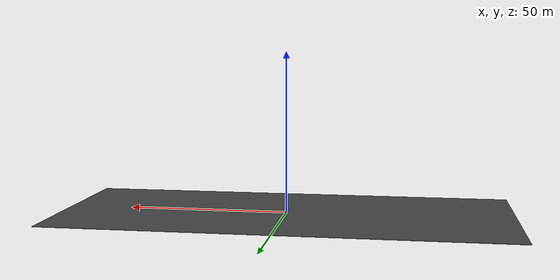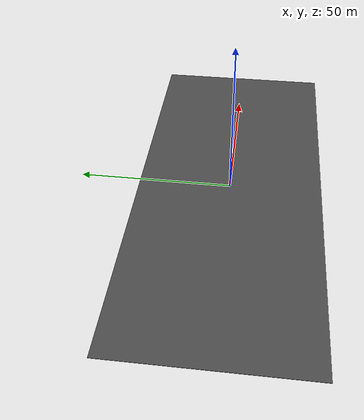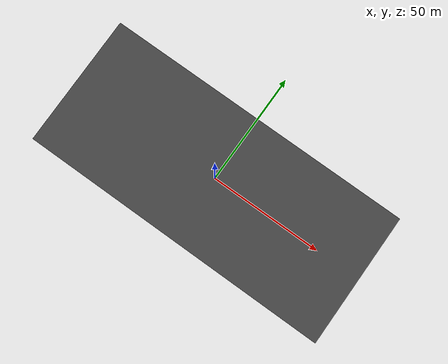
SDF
<?xml version="1.0" ?>
<sdf version="1.4">
  <model name="challenge_1_plane">
    <static>true</static>
    <link name="link">
      <collision name="collision">
        <geometry>
          <box>
            <size>140 60 .15</size>
          </box>
        </geometry>
      </collision>
      <visual name="visual">
        <cast_shadows>false</cast_shadows>
        <geometry>
          <box>
            <size>140 60 .15</size>
          </box>
        </geometry>
        <material>
          <script>
            <uri>model://challenge_1_plane/materials/scripts</uri>
            <uri>model://challenge_1_plane/materials/textures</uri>
            <name>vrc/asphalt</name>
          </script>
        </material>
      </visual>
    </link>
  </model>
</sdf>
